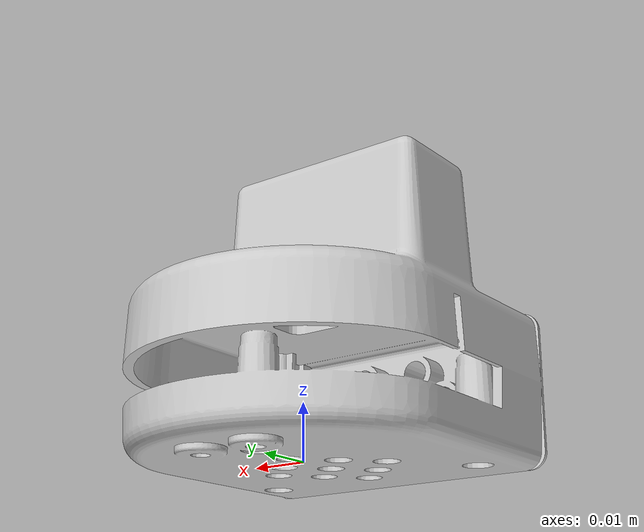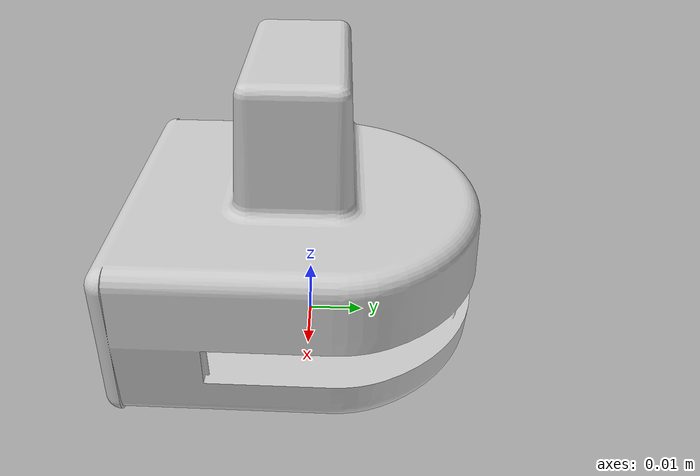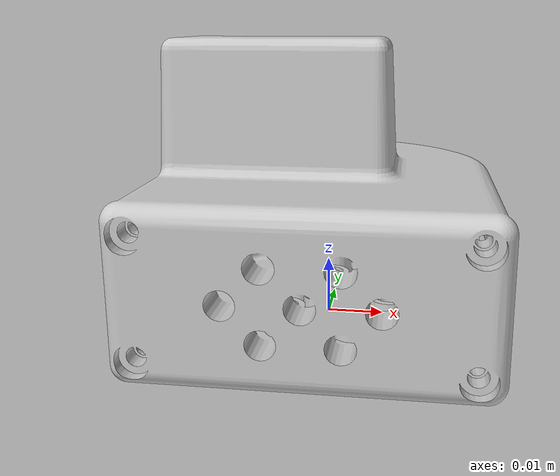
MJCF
<mujoco model="gripper_base">
  <default>
    <default class="visual">
      <geom group="2" type="mesh" contype="0" conaffinity="0"/>
    </default>
    <default class="collision">
      <geom group="3" type="mesh"/>
    </default>
  </default>
  <asset>
    <material name="material_0.005" specular="0.0" shininess="0.0" rgba="0.800000 0.800000 0.800000 1.000000"/>
    <mesh file="gripper_base.obj"/>
  </asset>
  <worldbody>
    <body name="gripper_base">
      <geom material="material_0.005" mesh="gripper_base" class="visual"/>
      <geom mesh="gripper_base" class="collision"/>
    </body>
  </worldbody>
</mujoco>
